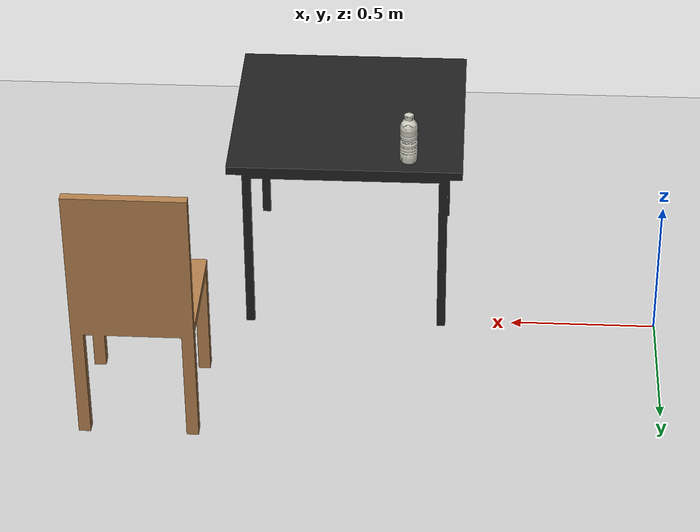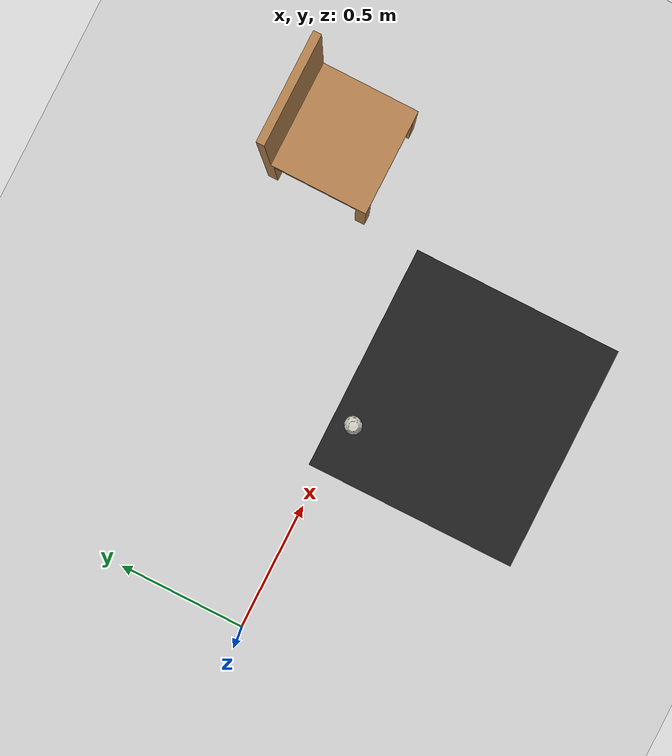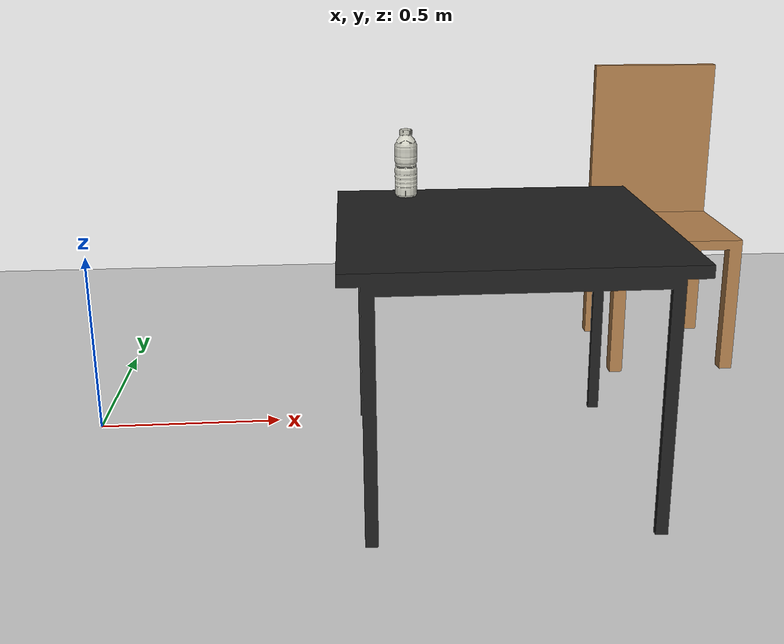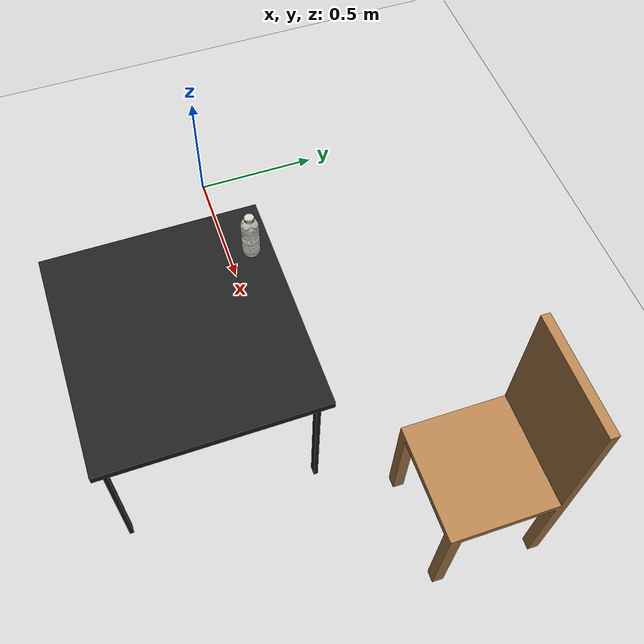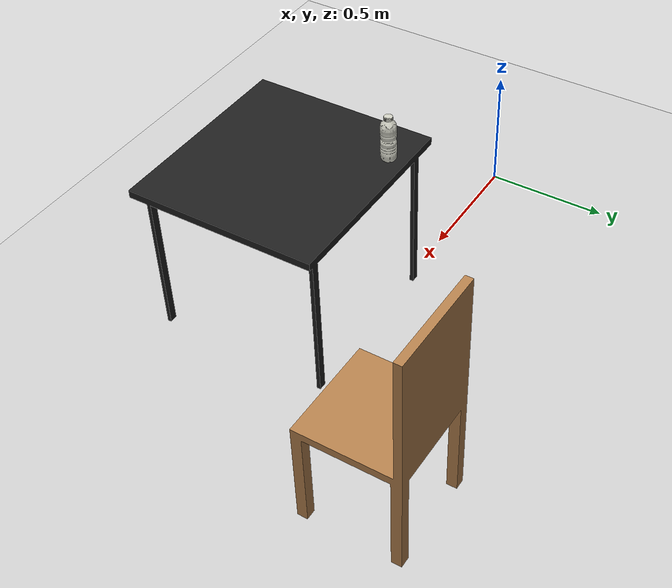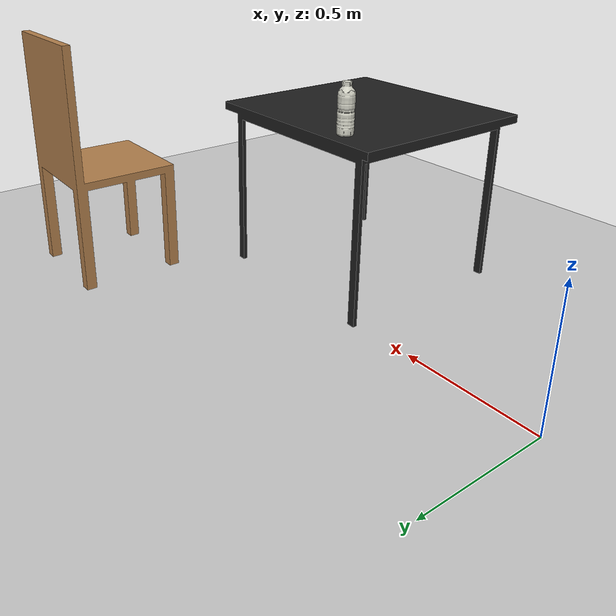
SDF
<sdf version="1.4">
 <world name="default">
  <physics type="ode">
   <gravity>0 0 -9.81</gravity>
   <ode>
    <solver><type>quick</type><iters>20</iters><sor>1</sor></solver>
    <constraints>
     <cfm>0</cfm>
     <erp>0.2</erp>
     <contact_max_correcting_vel>100</contact_max_correcting_vel>
     <contact_surface_layer>0</contact_surface_layer>
    </constraints>
   </ode>
   <real_time_update_rate>1000</real_time_update_rate>
   <max_step_size>0.001</max_step_size>
   <real_time_factor>1</real_time_factor>
  </physics>
  <light name="sun" type="directional">
   <pose>0 0 10 0 -0 0</pose>
   <diffuse>0.8 0.8 0.8 1</diffuse>
   <specular>0.2 0.2 0.2 1</specular>
   <attenuation>
    <range>1000</range>
    <constant>0.9</constant>
    <linear>0.01</linear>
    <quadratic>0.001</quadratic>
   </attenuation>
   <direction>-0.5 0.1 -0.9</direction>
  </light>
  <model name="ground_plane">
   <static>1</static>
   <link name="link">
    <collision name="collision">
     <geometry><plane><normal>0 0 1</normal><size>100 100</size></plane></geometry>
     <surface><friction><ode><mu>100</mu><mu2>50</mu2></ode></friction></surface>
    </collision>
    <visual name="visual">
     <cast_shadows>0</cast_shadows>
     <geometry><plane><normal>0 0 1</normal><size>100 100</size></plane></geometry>
     <material>
      <script><uri>file://media/materials/scripts/gazebo.material</uri><name>Gazebo/Grey</name></script>
     </material>
    </visual>
    <velocity_decay><linear>0</linear><angular>0</angular></velocity_decay>
   </link>
  </model>
  <scene><ambient>0.4 0.4 0.4 1</ambient><background>0.7 0.7 0.7 1</background><shadows>1</shadows></scene>
  <spherical_coordinates>
   <surface_model>EARTH_WGS84</surface_model>
   <latitude_deg>0</latitude_deg>
   <longitude_deg>0</longitude_deg>
   <elevation>0</elevation>
   <heading_deg>0</heading_deg>
  </spherical_coordinates>
  <model name="kitchen_table">
   <static>1</static>
   <link name="link">
    <collision name="colision1">
     <geometry>
      <mesh><uri>model://kitchen_table/meshes/kitchen_table.stl</uri><scale>1 1 1</scale></mesh>
     </geometry>
    </collision>
    <visual name="visual1">
     <geometry>
      <mesh><uri>model://kitchen_table/meshes/kitchen_table.stl</uri><scale>1 1 1</scale></mesh>
     </geometry>
     <material>
      <script><uri>file://media/materials/scripts/gazebo.material</uri><name>Gazebo/FlatBlack</name></script>
     </material>
    </visual>
    <velocity_decay><linear>0</linear><angular>0</angular></velocity_decay>
   </link>
   <pose>0.68368 -0.69646 0 0 -0 0</pose>
  </model>
  <model name="dining_chair">
   <static>1</static>
   <link name="link">
    <collision name="colision1">
     <geometry><mesh><uri>model://dining_chair/meshes/dining_chair.stl</uri><scale>1 1 1</scale></mesh></geometry>
    </collision>
    <visual name="visual1">
     <geometry><mesh><uri>model://dining_chair/meshes/dining_chair.stl</uri><scale>1 1 1</scale></mesh></geometry>
     <material>
      <script><uri>file://media/materials/scripts/gazebo.material</uri><name>Gazebo/Wood</name></script>
     </material>
    </visual>
    <velocity_decay><linear>0</linear><angular>0</angular></velocity_decay>
   </link>
   <pose>1.93565 0.666266 0 0 -0 3.13513</pose>
  </model>
  <model name="bottle">
   <static>0</static>
   <link name="link">
    <inertial>
     <mass>0.25</mass>
     <inertia><ixx>0</ixx><ixy>0</ixy><ixz>0</ixz><iyy>0</iyy><iyz>0</iyz><izz>0</izz></inertia>
    </inertial>
    <collision name="colision1">
     <geometry><mesh><uri>model://bottle/meshes/bottle.dae</uri><scale>1 1 1</scale></mesh></geometry>
    </collision>
    <visual name="visual1">
     <geometry><mesh><uri>model://bottle/meshes/bottle.dae</uri><scale>1 1 1</scale></mesh></geometry>
     <material>
      <script><uri>file://media/materials/scripts/gazebo.material</uri><name>Gazebo/PaintedWall</name></script>
     </material>
    </visual>
    <velocity_decay><linear>0</linear><angular>0</angular></velocity_decay>
   </link>
   <pose>0.868008 0.023856 0.660172 0.004104 0.001282 3.1e-05</pose>
  </model>
 </world>
</sdf>
